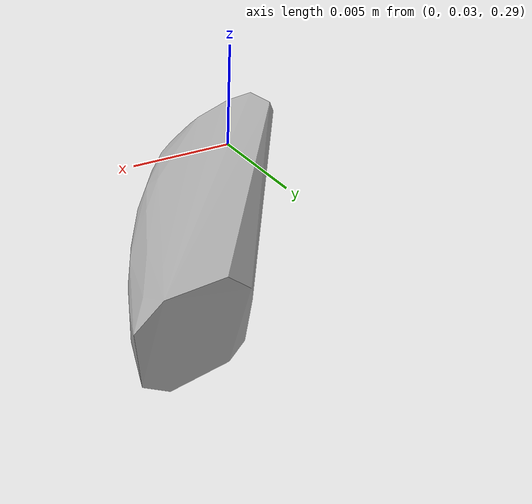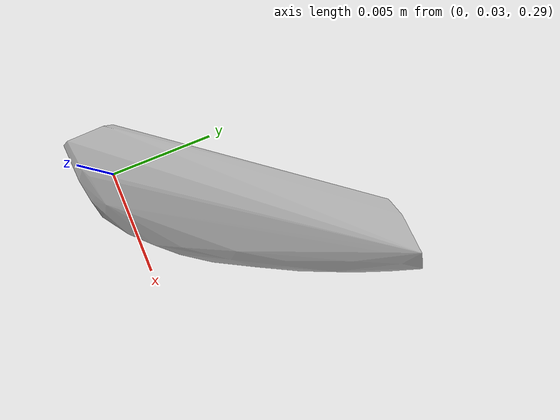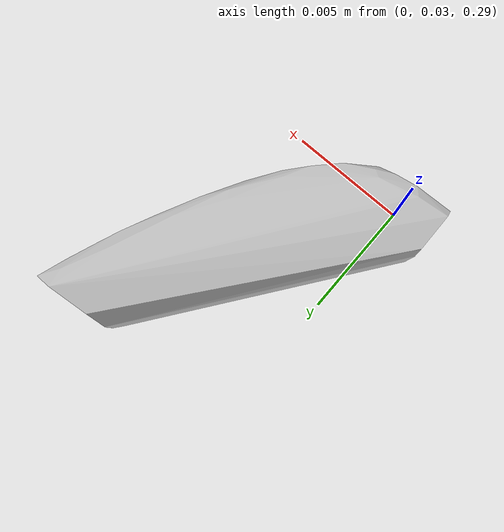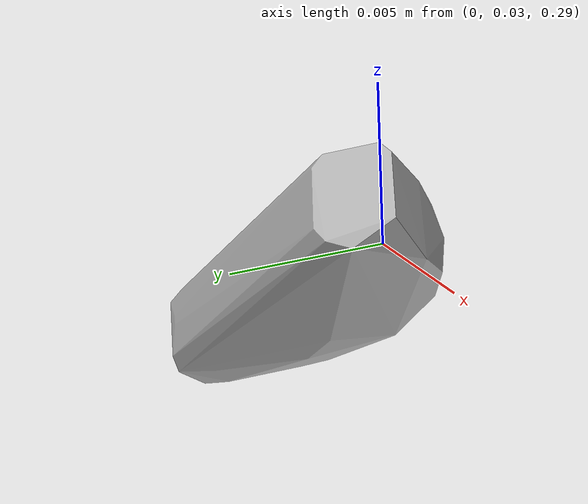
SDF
<?xml version="1.0"?>
<sdf version="1.7">
  <model name="vascular_partexport056">
    <link name="vascular_partexport056_body">
      <visual name="vascular_partexport056_visual">
        <geometry>
          <mesh>
            <uri>vascular_partexport056.obj</uri>
          </mesh>
        </geometry>
      </visual>
      <collision name="vascular_partexport056_collision">
        <geometry>
          <mesh>
            <uri>vascular_partexport056.obj</uri>
          </mesh>
        </geometry>
      </collision>
    </link>
    <frame name="vascular_partexport056_center">
      <pose relative_to="vascular_partexport056_body">0 0 0 0 0 0</pose>
    </frame>
  </model>
</sdf>
